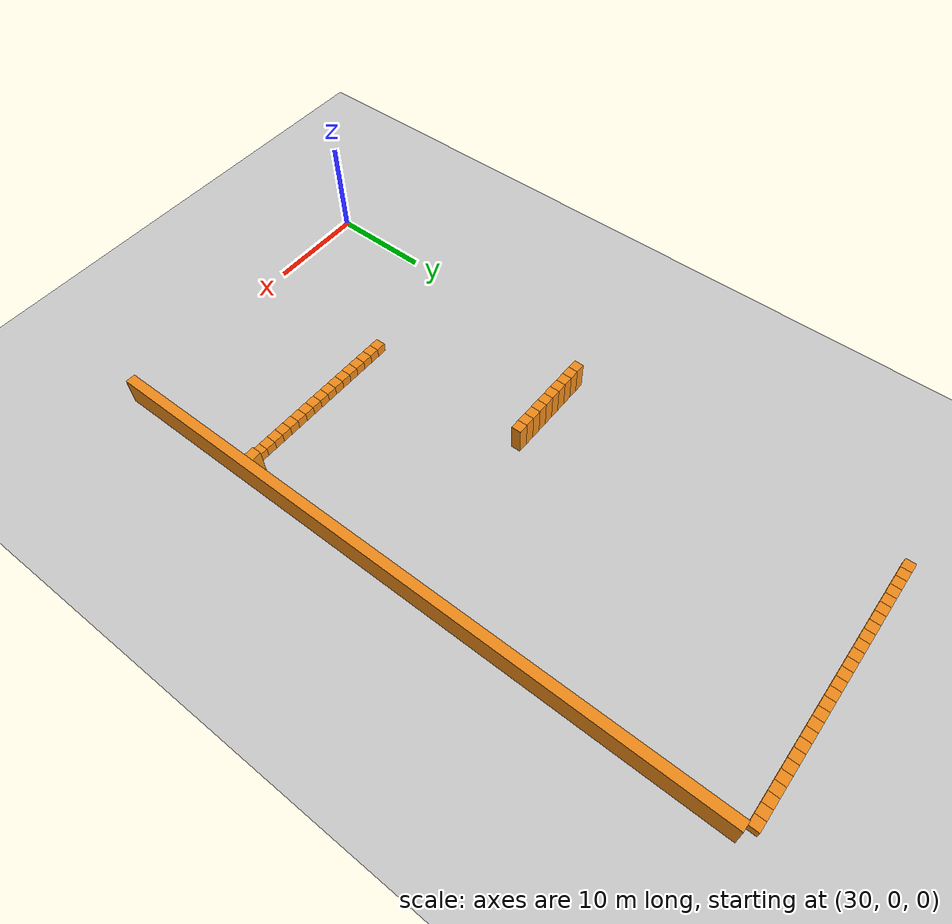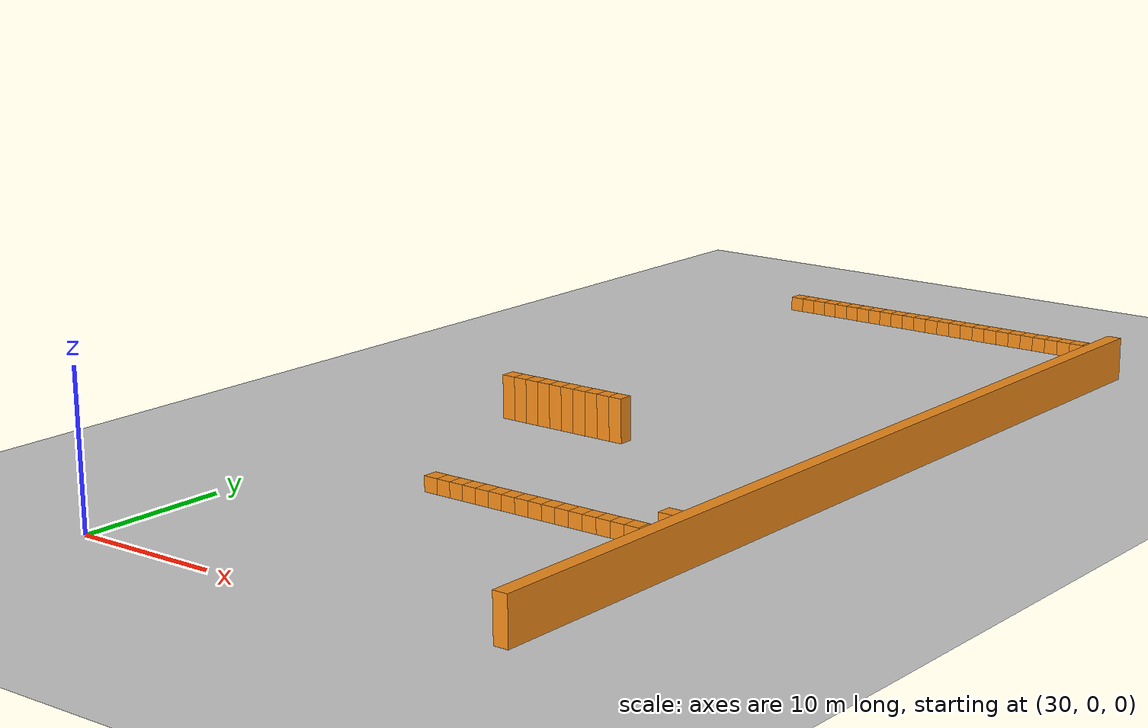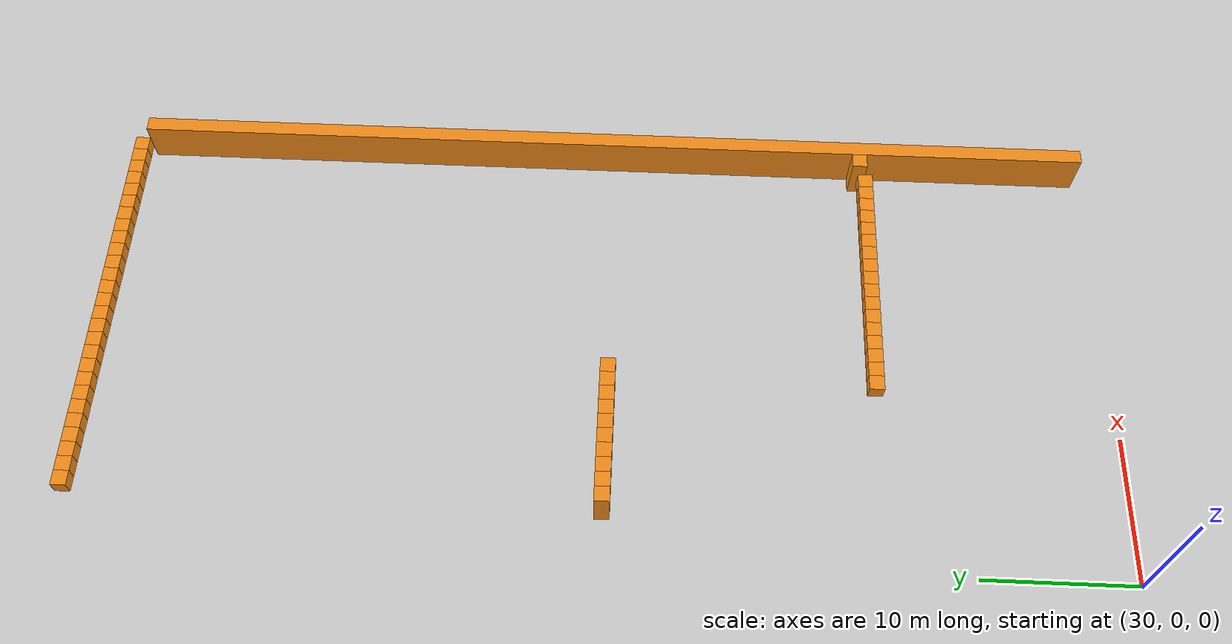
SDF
<sdf version="1.6">
 <world name="default">
  <include><uri>model://ground_plane</uri></include>
  <model name="unit_box_086">
   <pose>33.50    33.50     1.50 0 0 0</pose>
   <static>1</static>
   <link name="link">
    <inertial>
     <mass>5000</mass>
     <inertia><ixx>200</ixx><ixy>0</ixy><ixz>0</ixz><iyy>200</iyy><iyz>0</iyz><izz>200</izz></inertia>
    </inertial>
    <collision name="collision"><geometry><box><size>1 1 3</size></box></geometry></collision>
    <visual name="visual">
     <geometry><box><size>1 1 3</size></box></geometry>
     <material>
      <script><name>Gazebo/Orange</name><uri>file://media/materials/scripts/gazebo.material</uri></script>
     </material>
    </visual>
   </link>
  </model>
  <model name="unit_box_087">
   <pose>33.50    67.50     1.50 0 0 0</pose>
   <static>1</static>
   <link name="link">
    <inertial>
     <mass>5000</mass>
     <inertia><ixx>200</ixx><ixy>0</ixy><ixz>0</ixz><iyy>200</iyy><iyz>0</iyz><izz>200</izz></inertia>
    </inertial>
    <collision name="collision"><geometry><box><size>1 1 1</size></box></geometry></collision>
    <visual name="visual">
     <geometry><box><size>1 1 1</size></box></geometry>
     <material>
      <script><name>Gazebo/Orange</name><uri>file://media/materials/scripts/gazebo.material</uri></script>
     </material>
    </visual>
   </link>
  </model>
  <model name="unit_box_089">
   <pose>34.50    33.50     1.50 0 0 0</pose>
   <static>1</static>
   <link name="link">
    <inertial>
     <mass>5000</mass>
     <inertia><ixx>200</ixx><ixy>0</ixy><ixz>0</ixz><iyy>200</iyy><iyz>0</iyz><izz>200</izz></inertia>
    </inertial>
    <collision name="collision"><geometry><box><size>1 1 3</size></box></geometry></collision>
    <visual name="visual">
     <geometry><box><size>1 1 3</size></box></geometry>
     <material>
      <script><name>Gazebo/Orange</name><uri>file://media/materials/scripts/gazebo.material</uri></script>
     </material>
    </visual>
   </link>
  </model>
  <model name="unit_box_090">
   <pose>34.50    67.50     1.50 0 0 0</pose>
   <static>1</static>
   <link name="link">
    <inertial>
     <mass>5000</mass>
     <inertia><ixx>200</ixx><ixy>0</ixy><ixz>0</ixz><iyy>200</iyy><iyz>0</iyz><izz>200</izz></inertia>
    </inertial>
    <collision name="collision"><geometry><box><size>1 1 1</size></box></geometry></collision>
    <visual name="visual">
     <geometry><box><size>1 1 1</size></box></geometry>
     <material>
      <script><name>Gazebo/Orange</name><uri>file://media/materials/scripts/gazebo.material</uri></script>
     </material>
    </visual>
   </link>
  </model>
  <model name="unit_box_092">
   <pose>35.50    33.50     1.50 0 0 0</pose>
   <static>1</static>
   <link name="link">
    <inertial>
     <mass>5000</mass>
     <inertia><ixx>200</ixx><ixy>0</ixy><ixz>0</ixz><iyy>200</iyy><iyz>0</iyz><izz>200</izz></inertia>
    </inertial>
    <collision name="collision"><geometry><box><size>1 1 3</size></box></geometry></collision>
    <visual name="visual">
     <geometry><box><size>1 1 3</size></box></geometry>
     <material>
      <script><name>Gazebo/Orange</name><uri>file://media/materials/scripts/gazebo.material</uri></script>
     </material>
    </visual>
   </link>
  </model>
  <model name="unit_box_093">
   <pose>35.50    67.50     1.50 0 0 0</pose>
   <static>1</static>
   <link name="link">
    <inertial>
     <mass>5000</mass>
     <inertia><ixx>200</ixx><ixy>0</ixy><ixz>0</ixz><iyy>200</iyy><iyz>0</iyz><izz>200</izz></inertia>
    </inertial>
    <collision name="collision"><geometry><box><size>1 1 1</size></box></geometry></collision>
    <visual name="visual">
     <geometry><box><size>1 1 1</size></box></geometry>
     <material>
      <script><name>Gazebo/Orange</name><uri>file://media/materials/scripts/gazebo.material</uri></script>
     </material>
    </visual>
   </link>
  </model>
  <model name="unit_box_095">
   <pose>36.50    33.50     1.50 0 0 0</pose>
   <static>1</static>
   <link name="link">
    <inertial>
     <mass>5000</mass>
     <inertia><ixx>200</ixx><ixy>0</ixy><ixz>0</ixz><iyy>200</iyy><iyz>0</iyz><izz>200</izz></inertia>
    </inertial>
    <collision name="collision"><geometry><box><size>1 1 3</size></box></geometry></collision>
    <visual name="visual">
     <geometry><box><size>1 1 3</size></box></geometry>
     <material>
      <script><name>Gazebo/Orange</name><uri>file://media/materials/scripts/gazebo.material</uri></script>
     </material>
    </visual>
   </link>
  </model>
  <model name="unit_box_096">
   <pose>36.50    67.50     1.50 0 0 0</pose>
   <static>1</static>
   <link name="link">
    <inertial>
     <mass>5000</mass>
     <inertia><ixx>200</ixx><ixy>0</ixy><ixz>0</ixz><iyy>200</iyy><iyz>0</iyz><izz>200</izz></inertia>
    </inertial>
    <collision name="collision"><geometry><box><size>1 1 1</size></box></geometry></collision>
    <visual name="visual">
     <geometry><box><size>1 1 1</size></box></geometry>
     <material>
      <script><name>Gazebo/Orange</name><uri>file://media/materials/scripts/gazebo.material</uri></script>
     </material>
    </visual>
   </link>
  </model>
  <model name="unit_box_098">
   <pose>37.50    33.50     1.50 0 0 0</pose>
   <static>1</static>
   <link name="link">
    <inertial>
     <mass>5000</mass>
     <inertia><ixx>200</ixx><ixy>0</ixy><ixz>0</ixz><iyy>200</iyy><iyz>0</iyz><izz>200</izz></inertia>
    </inertial>
    <collision name="collision"><geometry><box><size>1 1 3</size></box></geometry></collision>
    <visual name="visual">
     <geometry><box><size>1 1 3</size></box></geometry>
     <material>
      <script><name>Gazebo/Orange</name><uri>file://media/materials/scripts/gazebo.material</uri></script>
     </material>
    </visual>
   </link>
  </model>
  <model name="unit_box_099">
   <pose>37.50    67.50     1.50 0 0 0</pose>
   <static>1</static>
   <link name="link">
    <inertial>
     <mass>5000</mass>
     <inertia><ixx>200</ixx><ixy>0</ixy><ixz>0</ixz><iyy>200</iyy><iyz>0</iyz><izz>200</izz></inertia>
    </inertial>
    <collision name="collision"><geometry><box><size>1 1 1</size></box></geometry></collision>
    <visual name="visual">
     <geometry><box><size>1 1 1</size></box></geometry>
     <material>
      <script><name>Gazebo/Orange</name><uri>file://media/materials/scripts/gazebo.material</uri></script>
     </material>
    </visual>
   </link>
  </model>
  <model name="unit_box_101">
   <pose>38.50    33.50     1.50 0 0 0</pose>
   <static>1</static>
   <link name="link">
    <inertial>
     <mass>5000</mass>
     <inertia><ixx>200</ixx><ixy>0</ixy><ixz>0</ixz><iyy>200</iyy><iyz>0</iyz><izz>200</izz></inertia>
    </inertial>
    <collision name="collision"><geometry><box><size>1 1 3</size></box></geometry></collision>
    <visual name="visual">
     <geometry><box><size>1 1 3</size></box></geometry>
     <material>
      <script><name>Gazebo/Orange</name><uri>file://media/materials/scripts/gazebo.material</uri></script>
     </material>
    </visual>
   </link>
  </model>
  <model name="unit_box_102">
   <pose>38.50    67.50     1.50 0 0 0</pose>
   <static>1</static>
   <link name="link">
    <inertial>
     <mass>5000</mass>
     <inertia><ixx>200</ixx><ixy>0</ixy><ixz>0</ixz><iyy>200</iyy><iyz>0</iyz><izz>200</izz></inertia>
    </inertial>
    <collision name="collision"><geometry><box><size>1 1 1</size></box></geometry></collision>
    <visual name="visual">
     <geometry><box><size>1 1 1</size></box></geometry>
     <material>
      <script><name>Gazebo/Orange</name><uri>file://media/materials/scripts/gazebo.material</uri></script>
     </material>
    </visual>
   </link>
  </model>
  <model name="unit_box_104">
   <pose>39.50    33.50     1.50 0 0 0</pose>
   <static>1</static>
   <link name="link">
    <inertial>
     <mass>5000</mass>
     <inertia><ixx>200</ixx><ixy>0</ixy><ixz>0</ixz><iyy>200</iyy><iyz>0</iyz><izz>200</izz></inertia>
    </inertial>
    <collision name="collision"><geometry><box><size>1 1 3</size></box></geometry></collision>
    <visual name="visual">
     <geometry><box><size>1 1 3</size></box></geometry>
     <material>
      <script><name>Gazebo/Orange</name><uri>file://media/materials/scripts/gazebo.material</uri></script>
     </material>
    </visual>
   </link>
  </model>
  <model name="unit_box_105">
   <pose>39.50    67.50     1.50 0 0 0</pose>
   <static>1</static>
   <link name="link">
    <inertial>
     <mass>5000</mass>
     <inertia><ixx>200</ixx><ixy>0</ixy><ixz>0</ixz><iyy>200</iyy><iyz>0</iyz><izz>200</izz></inertia>
    </inertial>
    <collision name="collision"><geometry><box><size>1 1 1</size></box></geometry></collision>
    <visual name="visual">
     <geometry><box><size>1 1 1</size></box></geometry>
     <material>
      <script><name>Gazebo/Orange</name><uri>file://media/materials/scripts/gazebo.material</uri></script>
     </material>
    </visual>
   </link>
  </model>
  <model name="unit_box_107">
   <pose>40.50    33.50     1.50 0 0 0</pose>
   <static>1</static>
   <link name="link">
    <inertial>
     <mass>5000</mass>
     <inertia><ixx>200</ixx><ixy>0</ixy><ixz>0</ixz><iyy>200</iyy><iyz>0</iyz><izz>200</izz></inertia>
    </inertial>
    <collision name="collision"><geometry><box><size>1 1 3</size></box></geometry></collision>
    <visual name="visual">
     <geometry><box><size>1 1 3</size></box></geometry>
     <material>
      <script><name>Gazebo/Orange</name><uri>file://media/materials/scripts/gazebo.material</uri></script>
     </material>
    </visual>
   </link>
  </model>
  <model name="unit_box_108">
   <pose>40.50    67.50     1.50 0 0 0</pose>
   <static>1</static>
   <link name="link">
    <inertial>
     <mass>5000</mass>
     <inertia><ixx>200</ixx><ixy>0</ixy><ixz>0</ixz><iyy>200</iyy><iyz>0</iyz><izz>200</izz></inertia>
    </inertial>
    <collision name="collision"><geometry><box><size>1 1 1</size></box></geometry></collision>
    <visual name="visual">
     <geometry><box><size>1 1 1</size></box></geometry>
     <material>
      <script><name>Gazebo/Orange</name><uri>file://media/materials/scripts/gazebo.material</uri></script>
     </material>
    </visual>
   </link>
  </model>
  <model name="unit_box_110">
   <pose>41.50    33.50     1.50 0 0 0</pose>
   <static>1</static>
   <link name="link">
    <inertial>
     <mass>5000</mass>
     <inertia><ixx>200</ixx><ixy>0</ixy><ixz>0</ixz><iyy>200</iyy><iyz>0</iyz><izz>200</izz></inertia>
    </inertial>
    <collision name="collision"><geometry><box><size>1 1 3</size></box></geometry></collision>
    <visual name="visual">
     <geometry><box><size>1 1 3</size></box></geometry>
     <material>
      <script><name>Gazebo/Orange</name><uri>file://media/materials/scripts/gazebo.material</uri></script>
     </material>
    </visual>
   </link>
  </model>
  <model name="unit_box_111">
   <pose>41.50    67.50     1.50 0 0 0</pose>
   <static>1</static>
   <link name="link">
    <inertial>
     <mass>5000</mass>
     <inertia><ixx>200</ixx><ixy>0</ixy><ixz>0</ixz><iyy>200</iyy><iyz>0</iyz><izz>200</izz></inertia>
    </inertial>
    <collision name="collision"><geometry><box><size>1 1 1</size></box></geometry></collision>
    <visual name="visual">
     <geometry><box><size>1 1 1</size></box></geometry>
     <material>
      <script><name>Gazebo/Orange</name><uri>file://media/materials/scripts/gazebo.material</uri></script>
     </material>
    </visual>
   </link>
  </model>
  <model name="unit_box_113">
   <pose>42.50    16.00     1.50 0 0 0</pose>
   <static>1</static>
   <link name="link">
    <inertial>
     <mass>5000</mass>
     <inertia><ixx>200</ixx><ixy>0</ixy><ixz>0</ixz><iyy>200</iyy><iyz>0</iyz><izz>200</izz></inertia>
    </inertial>
    <collision name="collision"><geometry><box><size>1 1 1</size></box></geometry></collision>
    <visual name="visual">
     <geometry><box><size>1 1 1</size></box></geometry>
     <material>
      <script><name>Gazebo/Orange</name><uri>file://media/materials/scripts/gazebo.material</uri></script>
     </material>
    </visual>
   </link>
  </model>
  <model name="unit_box_114">
   <pose>42.50    33.50     1.50 0 0 0</pose>
   <static>1</static>
   <link name="link">
    <inertial>
     <mass>5000</mass>
     <inertia><ixx>200</ixx><ixy>0</ixy><ixz>0</ixz><iyy>200</iyy><iyz>0</iyz><izz>200</izz></inertia>
    </inertial>
    <collision name="collision"><geometry><box><size>1 1 3</size></box></geometry></collision>
    <visual name="visual">
     <geometry><box><size>1 1 3</size></box></geometry>
     <material>
      <script><name>Gazebo/Orange</name><uri>file://media/materials/scripts/gazebo.material</uri></script>
     </material>
    </visual>
   </link>
  </model>
  <model name="unit_box_115">
   <pose>42.50    67.50     1.50 0 0 0</pose>
   <static>1</static>
   <link name="link">
    <inertial>
     <mass>5000</mass>
     <inertia><ixx>200</ixx><ixy>0</ixy><ixz>0</ixz><iyy>200</iyy><iyz>0</iyz><izz>200</izz></inertia>
    </inertial>
    <collision name="collision"><geometry><box><size>1 1 1</size></box></geometry></collision>
    <visual name="visual">
     <geometry><box><size>1 1 1</size></box></geometry>
     <material>
      <script><name>Gazebo/Orange</name><uri>file://media/materials/scripts/gazebo.material</uri></script>
     </material>
    </visual>
   </link>
  </model>
  <model name="unit_box_117">
   <pose>43.50    16.00     1.50 0 0 0</pose>
   <static>1</static>
   <link name="link">
    <inertial>
     <mass>5000</mass>
     <inertia><ixx>200</ixx><ixy>0</ixy><ixz>0</ixz><iyy>200</iyy><iyz>0</iyz><izz>200</izz></inertia>
    </inertial>
    <collision name="collision"><geometry><box><size>1 1 1</size></box></geometry></collision>
    <visual name="visual">
     <geometry><box><size>1 1 1</size></box></geometry>
     <material>
      <script><name>Gazebo/Orange</name><uri>file://media/materials/scripts/gazebo.material</uri></script>
     </material>
    </visual>
   </link>
  </model>
  <model name="unit_box_118">
   <pose>43.50    67.50     1.50 0 0 0</pose>
   <static>1</static>
   <link name="link">
    <inertial>
     <mass>5000</mass>
     <inertia><ixx>200</ixx><ixy>0</ixy><ixz>0</ixz><iyy>200</iyy><iyz>0</iyz><izz>200</izz></inertia>
    </inertial>
    <collision name="collision"><geometry><box><size>1 1 1</size></box></geometry></collision>
    <visual name="visual">
     <geometry><box><size>1 1 1</size></box></geometry>
     <material>
      <script><name>Gazebo/Orange</name><uri>file://media/materials/scripts/gazebo.material</uri></script>
     </material>
    </visual>
   </link>
  </model>
  <model name="unit_box_120">
   <pose>44.50    16.00     1.50 0 0 0</pose>
   <static>1</static>
   <link name="link">
    <inertial>
     <mass>5000</mass>
     <inertia><ixx>200</ixx><ixy>0</ixy><ixz>0</ixz><iyy>200</iyy><iyz>0</iyz><izz>200</izz></inertia>
    </inertial>
    <collision name="collision"><geometry><box><size>1 1 1</size></box></geometry></collision>
    <visual name="visual">
     <geometry><box><size>1 1 1</size></box></geometry>
     <material>
      <script><name>Gazebo/Orange</name><uri>file://media/materials/scripts/gazebo.material</uri></script>
     </material>
    </visual>
   </link>
  </model>
  <model name="unit_box_121">
   <pose>44.50    67.50     1.50 0 0 0</pose>
   <static>1</static>
   <link name="link">
    <inertial>
     <mass>5000</mass>
     <inertia><ixx>200</ixx><ixy>0</ixy><ixz>0</ixz><iyy>200</iyy><iyz>0</iyz><izz>200</izz></inertia>
    </inertial>
    <collision name="collision"><geometry><box><size>1 1 1</size></box></geometry></collision>
    <visual name="visual">
     <geometry><box><size>1 1 1</size></box></geometry>
     <material>
      <script><name>Gazebo/Orange</name><uri>file://media/materials/scripts/gazebo.material</uri></script>
     </material>
    </visual>
   </link>
  </model>
  <model name="unit_box_123">
   <pose>45.50    16.00     1.50 0 0 0</pose>
   <static>1</static>
   <link name="link">
    <inertial>
     <mass>5000</mass>
     <inertia><ixx>200</ixx><ixy>0</ixy><ixz>0</ixz><iyy>200</iyy><iyz>0</iyz><izz>200</izz></inertia>
    </inertial>
    <collision name="collision"><geometry><box><size>1 1 1</size></box></geometry></collision>
    <visual name="visual">
     <geometry><box><size>1 1 1</size></box></geometry>
     <material>
      <script><name>Gazebo/Orange</name><uri>file://media/materials/scripts/gazebo.material</uri></script>
     </material>
    </visual>
   </link>
  </model>
  <model name="unit_box_124">
   <pose>45.50    67.50     1.50 0 0 0</pose>
   <static>1</static>
   <link name="link">
    <inertial>
     <mass>5000</mass>
     <inertia><ixx>200</ixx><ixy>0</ixy><ixz>0</ixz><iyy>200</iyy><iyz>0</iyz><izz>200</izz></inertia>
    </inertial>
    <collision name="collision"><geometry><box><size>1 1 1</size></box></geometry></collision>
    <visual name="visual">
     <geometry><box><size>1 1 1</size></box></geometry>
     <material>
      <script><name>Gazebo/Orange</name><uri>file://media/materials/scripts/gazebo.material</uri></script>
     </material>
    </visual>
   </link>
  </model>
  <model name="unit_box_126">
   <pose>46.50    16.00     1.50 0 0 0</pose>
   <static>1</static>
   <link name="link">
    <inertial>
     <mass>5000</mass>
     <inertia><ixx>200</ixx><ixy>0</ixy><ixz>0</ixz><iyy>200</iyy><iyz>0</iyz><izz>200</izz></inertia>
    </inertial>
    <collision name="collision"><geometry><box><size>1 1 1</size></box></geometry></collision>
    <visual name="visual">
     <geometry><box><size>1 1 1</size></box></geometry>
     <material>
      <script><name>Gazebo/Orange</name><uri>file://media/materials/scripts/gazebo.material</uri></script>
     </material>
    </visual>
   </link>
  </model>
  <model name="unit_box_127">
   <pose>46.50    67.50     1.50 0 0 0</pose>
   <static>1</static>
   <link name="link">
    <inertial>
     <mass>5000</mass>
     <inertia><ixx>200</ixx><ixy>0</ixy><ixz>0</ixz><iyy>200</iyy><iyz>0</iyz><izz>200</izz></inertia>
    </inertial>
    <collision name="collision"><geometry><box><size>1 1 1</size></box></geometry></collision>
    <visual name="visual">
     <geometry><box><size>1 1 1</size></box></geometry>
     <material>
      <script><name>Gazebo/Orange</name><uri>file://media/materials/scripts/gazebo.material</uri></script>
     </material>
    </visual>
   </link>
  </model>
  <model name="unit_box_129">
   <pose>47.50    16.00     1.50 0 0 0</pose>
   <static>1</static>
   <link name="link">
    <inertial>
     <mass>5000</mass>
     <inertia><ixx>200</ixx><ixy>0</ixy><ixz>0</ixz><iyy>200</iyy><iyz>0</iyz><izz>200</izz></inertia>
    </inertial>
    <collision name="collision"><geometry><box><size>1 1 1</size></box></geometry></collision>
    <visual name="visual">
     <geometry><box><size>1 1 1</size></box></geometry>
     <material>
      <script><name>Gazebo/Orange</name><uri>file://media/materials/scripts/gazebo.material</uri></script>
     </material>
    </visual>
   </link>
  </model>
  <model name="unit_box_130">
   <pose>47.50    67.50     1.50 0 0 0</pose>
   <static>1</static>
   <link name="link">
    <inertial>
     <mass>5000</mass>
     <inertia><ixx>200</ixx><ixy>0</ixy><ixz>0</ixz><iyy>200</iyy><iyz>0</iyz><izz>200</izz></inertia>
    </inertial>
    <collision name="collision"><geometry><box><size>1 1 1</size></box></geometry></collision>
    <visual name="visual">
     <geometry><box><size>1 1 1</size></box></geometry>
     <material>
      <script><name>Gazebo/Orange</name><uri>file://media/materials/scripts/gazebo.material</uri></script>
     </material>
    </visual>
   </link>
  </model>
  <model name="unit_box_132">
   <pose>48.50    16.00     1.50 0 0 0</pose>
   <static>1</static>
   <link name="link">
    <inertial>
     <mass>5000</mass>
     <inertia><ixx>200</ixx><ixy>0</ixy><ixz>0</ixz><iyy>200</iyy><iyz>0</iyz><izz>200</izz></inertia>
    </inertial>
    <collision name="collision"><geometry><box><size>1 1 1</size></box></geometry></collision>
    <visual name="visual">
     <geometry><box><size>1 1 1</size></box></geometry>
     <material>
      <script><name>Gazebo/Orange</name><uri>file://media/materials/scripts/gazebo.material</uri></script>
     </material>
    </visual>
   </link>
  </model>
  <model name="unit_box_133">
   <pose>48.50    67.50     1.50 0 0 0</pose>
   <static>1</static>
   <link name="link">
    <inertial>
     <mass>5000</mass>
     <inertia><ixx>200</ixx><ixy>0</ixy><ixz>0</ixz><iyy>200</iyy><iyz>0</iyz><izz>200</izz></inertia>
    </inertial>
    <collision name="collision"><geometry><box><size>1 1 1</size></box></geometry></collision>
    <visual name="visual">
     <geometry><box><size>1 1 1</size></box></geometry>
     <material>
      <script><name>Gazebo/Orange</name><uri>file://media/materials/scripts/gazebo.material</uri></script>
     </material>
    </visual>
   </link>
  </model>
  <model name="unit_box_135">
   <pose>49.50    16.00     1.50 0 0 0</pose>
   <static>1</static>
   <link name="link">
    <inertial>
     <mass>5000</mass>
     <inertia><ixx>200</ixx><ixy>0</ixy><ixz>0</ixz><iyy>200</iyy><iyz>0</iyz><izz>200</izz></inertia>
    </inertial>
    <collision name="collision"><geometry><box><size>1 1 1</size></box></geometry></collision>
    <visual name="visual">
     <geometry><box><size>1 1 1</size></box></geometry>
     <material>
      <script><name>Gazebo/Orange</name><uri>file://media/materials/scripts/gazebo.material</uri></script>
     </material>
    </visual>
   </link>
  </model>
  <model name="unit_box_136">
   <pose>49.50    67.50     1.50 0 0 0</pose>
   <static>1</static>
   <link name="link">
    <inertial>
     <mass>5000</mass>
     <inertia><ixx>200</ixx><ixy>0</ixy><ixz>0</ixz><iyy>200</iyy><iyz>0</iyz><izz>200</izz></inertia>
    </inertial>
    <collision name="collision"><geometry><box><size>1 1 1</size></box></geometry></collision>
    <visual name="visual">
     <geometry><box><size>1 1 1</size></box></geometry>
     <material>
      <script><name>Gazebo/Orange</name><uri>file://media/materials/scripts/gazebo.material</uri></script>
     </material>
    </visual>
   </link>
  </model>
  <model name="unit_box_138">
   <pose>50.50    16.00     1.50 0 0 0</pose>
   <static>1</static>
   <link name="link">
    <inertial>
     <mass>5000</mass>
     <inertia><ixx>200</ixx><ixy>0</ixy><ixz>0</ixz><iyy>200</iyy><iyz>0</iyz><izz>200</izz></inertia>
    </inertial>
    <collision name="collision"><geometry><box><size>1 1 1</size></box></geometry></collision>
    <visual name="visual">
     <geometry><box><size>1 1 1</size></box></geometry>
     <material>
      <script><name>Gazebo/Orange</name><uri>file://media/materials/scripts/gazebo.material</uri></script>
     </material>
    </visual>
   </link>
  </model>
  <model name="unit_box_139">
   <pose>50.50    67.50     1.50 0 0 0</pose>
   <static>1</static>
   <link name="link">
    <inertial>
     <mass>5000</mass>
     <inertia><ixx>200</ixx><ixy>0</ixy><ixz>0</ixz><iyy>200</iyy><iyz>0</iyz><izz>200</izz></inertia>
    </inertial>
    <collision name="collision"><geometry><box><size>1 1 1</size></box></geometry></collision>
    <visual name="visual">
     <geometry><box><size>1 1 1</size></box></geometry>
     <material>
      <script><name>Gazebo/Orange</name><uri>file://media/materials/scripts/gazebo.material</uri></script>
     </material>
    </visual>
   </link>
  </model>
  <model name="unit_box_141">
   <pose>51.50    16.00     1.50 0 0 0</pose>
   <static>1</static>
   <link name="link">
    <inertial>
     <mass>5000</mass>
     <inertia><ixx>200</ixx><ixy>0</ixy><ixz>0</ixz><iyy>200</iyy><iyz>0</iyz><izz>200</izz></inertia>
    </inertial>
    <collision name="collision"><geometry><box><size>1 1 1</size></box></geometry></collision>
    <visual name="visual">
     <geometry><box><size>1 1 1</size></box></geometry>
     <material>
      <script><name>Gazebo/Orange</name><uri>file://media/materials/scripts/gazebo.material</uri></script>
     </material>
    </visual>
   </link>
  </model>
  <model name="unit_box_142">
   <pose>51.50    67.50     1.50 0 0 0</pose>
   <static>1</static>
   <link name="link">
    <inertial>
     <mass>5000</mass>
     <inertia><ixx>200</ixx><ixy>0</ixy><ixz>0</ixz><iyy>200</iyy><iyz>0</iyz><izz>200</izz></inertia>
    </inertial>
    <collision name="collision"><geometry><box><size>1 1 1</size></box></geometry></collision>
    <visual name="visual">
     <geometry><box><size>1 1 1</size></box></geometry>
     <material>
      <script><name>Gazebo/Orange</name><uri>file://media/materials/scripts/gazebo.material</uri></script>
     </material>
    </visual>
   </link>
  </model>
  <model name="unit_box_144">
   <pose>52.50    16.00     1.50 0 0 0</pose>
   <static>1</static>
   <link name="link">
    <inertial>
     <mass>5000</mass>
     <inertia><ixx>200</ixx><ixy>0</ixy><ixz>0</ixz><iyy>200</iyy><iyz>0</iyz><izz>200</izz></inertia>
    </inertial>
    <collision name="collision"><geometry><box><size>1 1 1</size></box></geometry></collision>
    <visual name="visual">
     <geometry><box><size>1 1 1</size></box></geometry>
     <material>
      <script><name>Gazebo/Orange</name><uri>file://media/materials/scripts/gazebo.material</uri></script>
     </material>
    </visual>
   </link>
  </model>
  <model name="unit_box_145">
   <pose>52.50    67.50     1.50 0 0 0</pose>
   <static>1</static>
   <link name="link">
    <inertial>
     <mass>5000</mass>
     <inertia><ixx>200</ixx><ixy>0</ixy><ixz>0</ixz><iyy>200</iyy><iyz>0</iyz><izz>200</izz></inertia>
    </inertial>
    <collision name="collision"><geometry><box><size>1 1 1</size></box></geometry></collision>
    <visual name="visual">
     <geometry><box><size>1 1 1</size></box></geometry>
     <material>
      <script><name>Gazebo/Orange</name><uri>file://media/materials/scripts/gazebo.material</uri></script>
     </material>
    </visual>
   </link>
  </model>
  <model name="unit_box_147">
   <pose>53.50    16.00     1.50 0 0 0</pose>
   <static>1</static>
   <link name="link">
    <inertial>
     <mass>5000</mass>
     <inertia><ixx>200</ixx><ixy>0</ixy><ixz>0</ixz><iyy>200</iyy><iyz>0</iyz><izz>200</izz></inertia>
    </inertial>
    <collision name="collision"><geometry><box><size>1 1 1</size></box></geometry></collision>
    <visual name="visual">
     <geometry><box><size>1 1 1</size></box></geometry>
     <material>
      <script><name>Gazebo/Orange</name><uri>file://media/materials/scripts/gazebo.material</uri></script>
     </material>
    </visual>
   </link>
  </model>
  <model name="unit_box_148">
   <pose>53.50    67.50     1.50 0 0 0</pose>
   <static>1</static>
   <link name="link">
    <inertial>
     <mass>5000</mass>
     <inertia><ixx>200</ixx><ixy>0</ixy><ixz>0</ixz><iyy>200</iyy><iyz>0</iyz><izz>200</izz></inertia>
    </inertial>
    <collision name="collision"><geometry><box><size>1 1 1</size></box></geometry></collision>
    <visual name="visual">
     <geometry><box><size>1 1 1</size></box></geometry>
     <material>
      <script><name>Gazebo/Orange</name><uri>file://media/materials/scripts/gazebo.material</uri></script>
     </material>
    </visual>
   </link>
  </model>
  <model name="unit_box_150">
   <pose>54.50    16.00     1.50 0 0 0</pose>
   <static>1</static>
   <link name="link">
    <inertial>
     <mass>5000</mass>
     <inertia><ixx>200</ixx><ixy>0</ixy><ixz>0</ixz><iyy>200</iyy><iyz>0</iyz><izz>200</izz></inertia>
    </inertial>
    <collision name="collision"><geometry><box><size>1 1 1</size></box></geometry></collision>
    <visual name="visual">
     <geometry><box><size>1 1 1</size></box></geometry>
     <material>
      <script><name>Gazebo/Orange</name><uri>file://media/materials/scripts/gazebo.material</uri></script>
     </material>
    </visual>
   </link>
  </model>
  <model name="unit_box_151">
   <pose>54.50    67.50     1.50 0 0 0</pose>
   <static>1</static>
   <link name="link">
    <inertial>
     <mass>5000</mass>
     <inertia><ixx>200</ixx><ixy>0</ixy><ixz>0</ixz><iyy>200</iyy><iyz>0</iyz><izz>200</izz></inertia>
    </inertial>
    <collision name="collision"><geometry><box><size>1 1 1</size></box></geometry></collision>
    <visual name="visual">
     <geometry><box><size>1 1 1</size></box></geometry>
     <material>
      <script><name>Gazebo/Orange</name><uri>file://media/materials/scripts/gazebo.material</uri></script>
     </material>
    </visual>
   </link>
  </model>
  <model name="unit_box_153">
   <pose>55.50    16.00     1.50 0 0 0</pose>
   <static>1</static>
   <link name="link">
    <inertial>
     <mass>5000</mass>
     <inertia><ixx>200</ixx><ixy>0</ixy><ixz>0</ixz><iyy>200</iyy><iyz>0</iyz><izz>200</izz></inertia>
    </inertial>
    <collision name="collision"><geometry><box><size>1 1 1</size></box></geometry></collision>
    <visual name="visual">
     <geometry><box><size>1 1 1</size></box></geometry>
     <material>
      <script><name>Gazebo/Orange</name><uri>file://media/materials/scripts/gazebo.material</uri></script>
     </material>
    </visual>
   </link>
  </model>
  <model name="unit_box_154">
   <pose>55.50    67.50     1.50 0 0 0</pose>
   <static>1</static>
   <link name="link">
    <inertial>
     <mass>5000</mass>
     <inertia><ixx>200</ixx><ixy>0</ixy><ixz>0</ixz><iyy>200</iyy><iyz>0</iyz><izz>200</izz></inertia>
    </inertial>
    <collision name="collision"><geometry><box><size>1 1 1</size></box></geometry></collision>
    <visual name="visual">
     <geometry><box><size>1 1 1</size></box></geometry>
     <material>
      <script><name>Gazebo/Orange</name><uri>file://media/materials/scripts/gazebo.material</uri></script>
     </material>
    </visual>
   </link>
  </model>
  <model name="unit_box_156">
   <pose>56.50    16.00     1.50 0 0 0</pose>
   <static>1</static>
   <link name="link">
    <inertial>
     <mass>5000</mass>
     <inertia><ixx>200</ixx><ixy>0</ixy><ixz>0</ixz><iyy>200</iyy><iyz>0</iyz><izz>200</izz></inertia>
    </inertial>
    <collision name="collision"><geometry><box><size>1 1 1</size></box></geometry></collision>
    <visual name="visual">
     <geometry><box><size>1 1 1</size></box></geometry>
     <material>
      <script><name>Gazebo/Orange</name><uri>file://media/materials/scripts/gazebo.material</uri></script>
     </material>
    </visual>
   </link>
  </model>
  <model name="unit_box_157">
   <pose>56.50    67.50     1.50 0 0 0</pose>
   <static>1</static>
   <link name="link">
    <inertial>
     <mass>5000</mass>
     <inertia><ixx>200</ixx><ixy>0</ixy><ixz>0</ixz><iyy>200</iyy><iyz>0</iyz><izz>200</izz></inertia>
    </inertial>
    <collision name="collision"><geometry><box><size>1 1 1</size></box></geometry></collision>
    <visual name="visual">
     <geometry><box><size>1 1 1</size></box></geometry>
     <material>
      <script><name>Gazebo/Orange</name><uri>file://media/materials/scripts/gazebo.material</uri></script>
     </material>
    </visual>
   </link>
  </model>
  <model name="unit_box_159">
   <pose>57.50    16.00     1.50 0 0 0</pose>
   <static>1</static>
   <link name="link">
    <inertial>
     <mass>5000</mass>
     <inertia><ixx>200</ixx><ixy>0</ixy><ixz>0</ixz><iyy>200</iyy><iyz>0</iyz><izz>200</izz></inertia>
    </inertial>
    <collision name="collision"><geometry><box><size>1 1 1</size></box></geometry></collision>
    <visual name="visual">
     <geometry><box><size>1 1 1</size></box></geometry>
     <material>
      <script><name>Gazebo/Orange</name><uri>file://media/materials/scripts/gazebo.material</uri></script>
     </material>
    </visual>
   </link>
  </model>
  <model name="unit_box_160">
   <pose>57.50    67.50     1.50 0 0 0</pose>
   <static>1</static>
   <link name="link">
    <inertial>
     <mass>5000</mass>
     <inertia><ixx>200</ixx><ixy>0</ixy><ixz>0</ixz><iyy>200</iyy><iyz>0</iyz><izz>200</izz></inertia>
    </inertial>
    <collision name="collision"><geometry><box><size>1 1 1</size></box></geometry></collision>
    <visual name="visual">
     <geometry><box><size>1 1 1</size></box></geometry>
     <material>
      <script><name>Gazebo/Orange</name><uri>file://media/materials/scripts/gazebo.material</uri></script>
     </material>
    </visual>
   </link>
  </model>
  <model name="unit_box_162">
   <pose>58.50    16.00     1.50 0 0 0</pose>
   <static>1</static>
   <link name="link">
    <inertial>
     <mass>5000</mass>
     <inertia><ixx>200</ixx><ixy>0</ixy><ixz>0</ixz><iyy>200</iyy><iyz>0</iyz><izz>200</izz></inertia>
    </inertial>
    <collision name="collision"><geometry><box><size>1 1 1</size></box></geometry></collision>
    <visual name="visual">
     <geometry><box><size>1 1 1</size></box></geometry>
     <material>
      <script><name>Gazebo/Orange</name><uri>file://media/materials/scripts/gazebo.material</uri></script>
     </material>
    </visual>
   </link>
  </model>
  <model name="unit_box_163">
   <pose>58.50    67.50     1.50 0 0 0</pose>
   <static>1</static>
   <link name="link">
    <inertial>
     <mass>5000</mass>
     <inertia><ixx>200</ixx><ixy>0</ixy><ixz>0</ixz><iyy>200</iyy><iyz>0</iyz><izz>200</izz></inertia>
    </inertial>
    <collision name="collision"><geometry><box><size>1 1 1</size></box></geometry></collision>
    <visual name="visual">
     <geometry><box><size>1 1 1</size></box></geometry>
     <material>
      <script><name>Gazebo/Orange</name><uri>file://media/materials/scripts/gazebo.material</uri></script>
     </material>
    </visual>
   </link>
  </model>
  <model name="unit_box_165">
   <pose>59.50    16.50     1.50 0 0 0</pose>
   <static>1</static>
   <link name="link">
    <inertial>
     <mass>5000</mass>
     <inertia><ixx>200</ixx><ixy>0</ixy><ixz>0</ixz><iyy>200</iyy><iyz>0</iyz><izz>200</izz></inertia>
    </inertial>
    <collision name="collision"><geometry><box><size>1 1 3</size></box></geometry></collision>
    <visual name="visual">
     <geometry><box><size>1 1 3</size></box></geometry>
     <material>
      <script><name>Gazebo/Orange</name><uri>file://media/materials/scripts/gazebo.material</uri></script>
     </material>
    </visual>
   </link>
  </model>
  <model name="unit_box_166">
   <pose>59.50    67.50     1.50 0 0 0</pose>
   <static>1</static>
   <link name="link">
    <inertial>
     <mass>5000</mass>
     <inertia><ixx>200</ixx><ixy>0</ixy><ixz>0</ixz><iyy>200</iyy><iyz>0</iyz><izz>200</izz></inertia>
    </inertial>
    <collision name="collision"><geometry><box><size>1 1 1</size></box></geometry></collision>
    <visual name="visual">
     <geometry><box><size>1 1 1</size></box></geometry>
     <material>
      <script><name>Gazebo/Orange</name><uri>file://media/materials/scripts/gazebo.material</uri></script>
     </material>
    </visual>
   </link>
  </model>
  <model name="unit_box_167">
   <pose>60.50    34.00     1.50 0 0 0</pose>
   <static>1</static>
   <link name="link">
    <inertial>
     <mass>5000</mass>
     <inertia><ixx>200</ixx><ixy>0</ixy><ixz>0</ixz><iyy>200</iyy><iyz>0</iyz><izz>200</izz></inertia>
    </inertial>
    <collision name="collision"><geometry><box><size>1 66 3</size></box></geometry></collision>
    <visual name="visual">
     <geometry><box><size>1 66 3</size></box></geometry>
     <material>
      <script><name>Gazebo/Orange</name><uri>file://media/materials/scripts/gazebo.material</uri></script>
     </material>
    </visual>
   </link>
  </model>
 </world>
</sdf>
